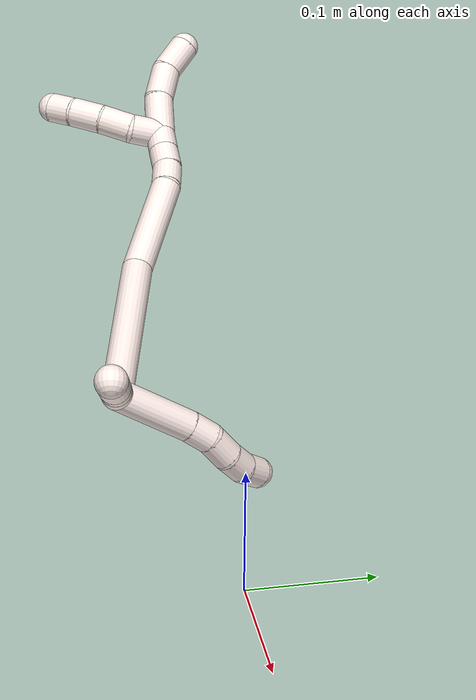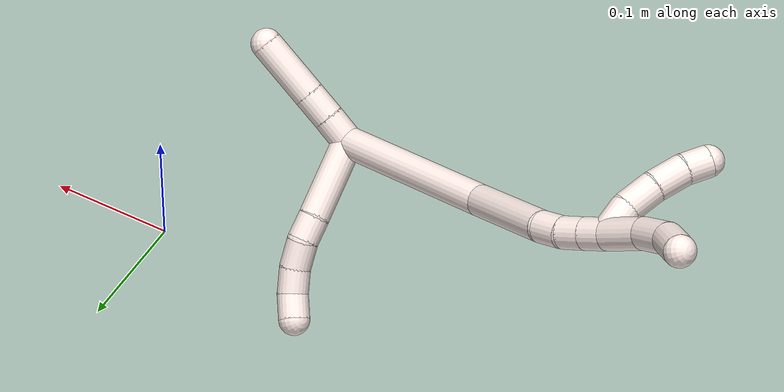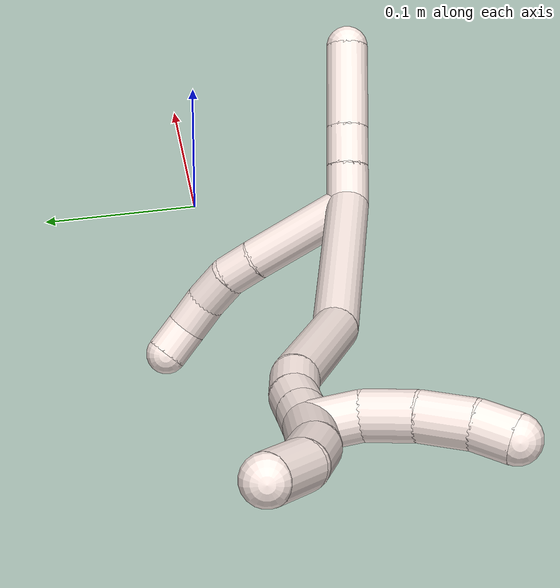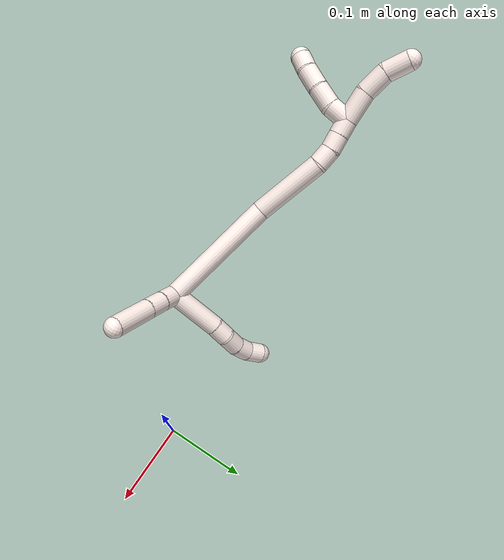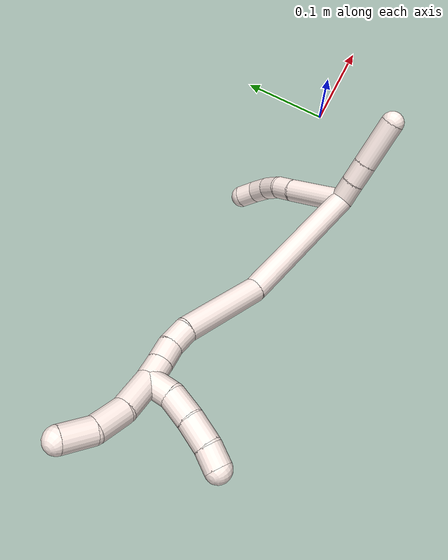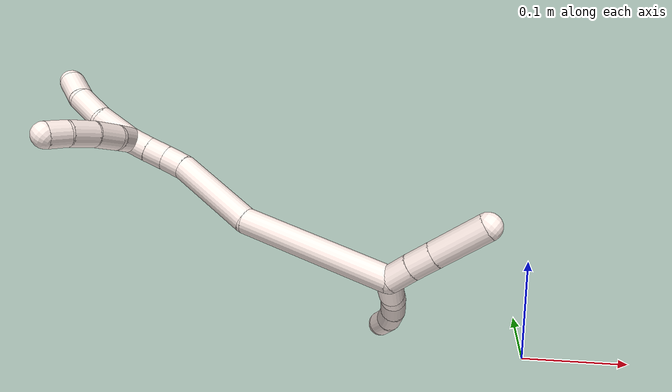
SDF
<sdf version="1.7">
 <world name="default">
  <model name="11">
   <static>0</static>
   <link name="11">
    <collision name="collision-cylinder-e_1_2_8">
     <pose>-0.011752 0.029903 -0.006455 -1.7834 -0.366769 0.451711</pose>
     <geometry><cylinder><radius>0.0125</radius><length>0.065543</length></cylinder></geometry>
     <surface>
      <friction><ode><mu>1.16</mu><mu2>1.16</mu2><slip1>0</slip1><slip2>0</slip2></ode></friction>
      <contact><ode><kp>1e+06</kp><kd>1</kd><max_vel>0</max_vel><min_depth>0.001</min_depth></ode></contact>
     </surface>
    </collision>
    <visual name="visual-cylinder-e_1_2_8">
     <pose>-0.011752 0.029903 -0.006455 -1.7834 -0.366769 0.451711</pose>
     <geometry><cylinder><radius>0.0125</radius><length>0.065543</length></cylinder></geometry>
     <material><ambient>1 0.933333 0.909804 1</ambient></material>
    </visual>
    <collision name="collision-cylinder-e_2_8_9">
     <pose>-0.027444 0.068839 -0.01591 -1.89147 -0.392504 0.537704</pose>
     <geometry><cylinder><radius>0.0125</radius><length>0.020603</length></cylinder></geometry>
     <surface>
      <friction><ode><mu>1.16</mu><mu2>1.16</mu2><slip1>0</slip1><slip2>0</slip2></ode></friction>
      <contact><ode><kp>1e+06</kp><kd>1</kd><max_vel>0</max_vel><min_depth>0.001</min_depth></ode></contact>
     </surface>
    </collision>
    <visual name="visual-cylinder-e_2_8_9">
     <pose>-0.027444 0.068839 -0.01591 -1.89147 -0.392504 0.537704</pose>
     <geometry><cylinder><radius>0.0125</radius><length>0.020603</length></cylinder></geometry>
     <material><ambient>1 0.933333 0.909804 1</ambient></material>
    </visual>
    <collision name="collision-cylinder-e_3_9_10">
     <pose>-0.038095 0.08599 -0.023131 -2.0502 -0.632805 0.98903</pose>
     <geometry><cylinder><radius>0.0125</radius><length>0.022693</length></cylinder></geometry>
     <surface>
      <friction><ode><mu>1.16</mu><mu2>1.16</mu2><slip1>0</slip1><slip2>0</slip2></ode></friction>
      <contact><ode><kp>1e+06</kp><kd>1</kd><max_vel>0</max_vel><min_depth>0.001</min_depth></ode></contact>
     </surface>
    </collision>
    <visual name="visual-cylinder-e_3_9_10">
     <pose>-0.038095 0.08599 -0.023131 -2.0502 -0.632805 0.98903</pose>
     <geometry><cylinder><radius>0.0125</radius><length>0.022693</length></cylinder></geometry>
     <material><ambient>1 0.933333 0.909804 1</ambient></material>
    </visual>
    <collision name="collision-cylinder-e_4_10_11">
     <pose>-0.051926 0.101431 -0.029175 -1.81499 -0.756383 0.940789</pose>
     <geometry><cylinder><radius>0.0125</radius><length>0.020751</length></cylinder></geometry>
     <surface>
      <friction><ode><mu>1.16</mu><mu2>1.16</mu2><slip1>0</slip1><slip2>0</slip2></ode></friction>
      <contact><ode><kp>1e+06</kp><kd>1</kd><max_vel>0</max_vel><min_depth>0.001</min_depth></ode></contact>
     </surface>
    </collision>
    <visual name="visual-cylinder-e_4_10_11">
     <pose>-0.051926 0.101431 -0.029175 -1.81499 -0.756383 0.940789</pose>
     <geometry><cylinder><radius>0.0125</radius><length>0.020751</length></cylinder></geometry>
     <material><ambient>1 0.933333 0.909804 1</ambient></material>
    </visual>
    <collision name="collision-cylinder-e_5_11_6">
     <pose>-0.065964 0.116183 -0.029953 -1.43078 -0.744848 0.654502</pose>
     <geometry><cylinder><radius>0.0125</radius><length>0.020409</length></cylinder></geometry>
     <surface>
      <friction><ode><mu>1.16</mu><mu2>1.16</mu2><slip1>0</slip1><slip2>0</slip2></ode></friction>
      <contact><ode><kp>1e+06</kp><kd>1</kd><max_vel>0</max_vel><min_depth>0.001</min_depth></ode></contact>
     </surface>
    </collision>
    <visual name="visual-cylinder-e_5_11_6">
     <pose>-0.065964 0.116183 -0.029953 -1.43078 -0.744848 0.654502</pose>
     <geometry><cylinder><radius>0.0125</radius><length>0.020409</length></cylinder></geometry>
     <material><ambient>1 0.933333 0.909804 1</ambient></material>
    </visual>
    <collision name="collision-cylinder-e_1_2_12">
     <pose>0.011425 -0.002072 -0.00338 2.59152 1.2368 2.38643</pose>
     <geometry><cylinder><radius>0.0125</radius><length>0.024187</length></cylinder></geometry>
     <surface>
      <friction><ode><mu>1.16</mu><mu2>1.16</mu2><slip1>0</slip1><slip2>0</slip2></ode></friction>
      <contact><ode><kp>1e+06</kp><kd>1</kd><max_vel>0</max_vel><min_depth>0.001</min_depth></ode></contact>
     </surface>
    </collision>
    <visual name="visual-cylinder-e_1_2_12">
     <pose>0.011425 -0.002072 -0.00338 2.59152 1.2368 2.38643</pose>
     <geometry><cylinder><radius>0.0125</radius><length>0.024187</length></cylinder></geometry>
     <material><ambient>1 0.933333 0.909804 1</ambient></material>
    </visual>
    <collision name="collision-cylinder-e_2_12_13">
     <pose>0.033977 -0.006173 -0.010519 2.64694 1.2042 2.43738</pose>
     <geometry><cylinder><radius>0.0125</radius><length>0.023836</length></cylinder></geometry>
     <surface>
      <friction><ode><mu>1.16</mu><mu2>1.16</mu2><slip1>0</slip1><slip2>0</slip2></ode></friction>
      <contact><ode><kp>1e+06</kp><kd>1</kd><max_vel>0</max_vel><min_depth>0.001</min_depth></ode></contact>
     </surface>
    </collision>
    <visual name="visual-cylinder-e_2_12_13">
     <pose>0.033977 -0.006173 -0.010519 2.64694 1.2042 2.43738</pose>
     <geometry><cylinder><radius>0.0125</radius><length>0.023836</length></cylinder></geometry>
     <material><ambient>1 0.933333 0.909804 1</ambient></material>
    </visual>
    <collision name="collision-cylinder-e_3_13_5">
     <pose>0.069368 -0.012611 -0.022474 2.64791 1.20457 2.43896</pose>
     <geometry><cylinder><radius>0.0125</radius><length>0.051977</length></cylinder></geometry>
     <surface>
      <friction><ode><mu>1.16</mu><mu2>1.16</mu2><slip1>0</slip1><slip2>0</slip2></ode></friction>
      <contact><ode><kp>1e+06</kp><kd>1</kd><max_vel>0</max_vel><min_depth>0.001</min_depth></ode></contact>
     </surface>
    </collision>
    <visual name="visual-cylinder-e_3_13_5">
     <pose>0.069368 -0.012611 -0.022474 2.64791 1.20457 2.43896</pose>
     <geometry><cylinder><radius>0.0125</radius><length>0.051977</length></cylinder></geometry>
     <material><ambient>1 0.933333 0.909804 1</ambient></material>
    </visual>
    <collision name="collision-cylinder-e_1_2_14">
     <pose>-0.027345 0.011525 0.067902 -0.168129 -0.377946 0.032229</pose>
     <geometry><cylinder><radius>0.0125</radius><length>0.148205</length></cylinder></geometry>
     <surface>
      <friction><ode><mu>1.16</mu><mu2>1.16</mu2><slip1>0</slip1><slip2>0</slip2></ode></friction>
      <contact><ode><kp>1e+06</kp><kd>1</kd><max_vel>0</max_vel><min_depth>0.001</min_depth></ode></contact>
     </surface>
    </collision>
    <visual name="visual-cylinder-e_1_2_14">
     <pose>-0.027345 0.011525 0.067902 -0.168129 -0.377946 0.032229</pose>
     <geometry><cylinder><radius>0.0125</radius><length>0.148205</length></cylinder></geometry>
     <material><ambient>1 0.933333 0.909804 1</ambient></material>
    </visual>
    <collision name="collision-cylinder-e_2_14_15">
     <pose>-0.059585 0.035977 0.178449 -0.294316 -0.109421 0.016235</pose>
     <geometry><cylinder><radius>0.0125</radius><length>0.089659</length></cylinder></geometry>
     <surface>
      <friction><ode><mu>1.16</mu><mu2>1.16</mu2><slip1>0</slip1><slip2>0</slip2></ode></friction>
      <contact><ode><kp>1e+06</kp><kd>1</kd><max_vel>0</max_vel><min_depth>0.001</min_depth></ode></contact>
     </surface>
    </collision>
    <visual name="visual-cylinder-e_2_14_15">
     <pose>-0.059585 0.035977 0.178449 -0.294316 -0.109421 0.016235</pose>
     <geometry><cylinder><radius>0.0125</radius><length>0.089659</length></cylinder></geometry>
     <material><ambient>1 0.933333 0.909804 1</ambient></material>
    </visual>
    <collision name="collision-cylinder-e_3_15_16">
     <pose>-0.0675 0.049951 0.231676 -0.098695 -0.276655 0.013751</pose>
     <geometry><cylinder><radius>0.0125</radius><length>0.022109</length></cylinder></geometry>
     <surface>
      <friction><ode><mu>1.16</mu><mu2>1.16</mu2><slip1>0</slip1><slip2>0</slip2></ode></friction>
      <contact><ode><kp>1e+06</kp><kd>1</kd><max_vel>0</max_vel><min_depth>0.001</min_depth></ode></contact>
     </surface>
    </collision>
    <visual name="visual-cylinder-e_3_15_16">
     <pose>-0.0675 0.049951 0.231676 -0.098695 -0.276655 0.013751</pose>
     <geometry><cylinder><radius>0.0125</radius><length>0.022109</length></cylinder></geometry>
     <material><ambient>1 0.933333 0.909804 1</ambient></material>
    </visual>
    <collision name="collision-cylinder-e_4_16_17">
     <pose>-0.073022 0.049818 0.25187 0.122231 -0.252965 -0.015562</pose>
     <geometry><cylinder><radius>0.0125</radius><length>0.020004</length></cylinder></geometry>
     <surface>
      <friction><ode><mu>1.16</mu><mu2>1.16</mu2><slip1>0</slip1><slip2>0</slip2></ode></friction>
      <contact><ode><kp>1e+06</kp><kd>1</kd><max_vel>0</max_vel><min_depth>0.001</min_depth></ode></contact>
     </surface>
    </collision>
    <visual name="visual-cylinder-e_4_16_17">
     <pose>-0.073022 0.049818 0.25187 0.122231 -0.252965 -0.015562</pose>
     <geometry><cylinder><radius>0.0125</radius><length>0.020004</length></cylinder></geometry>
     <material><ambient>1 0.933333 0.909804 1</ambient></material>
    </visual>
    <collision name="collision-cylinder-e_5_17_1">
     <pose>-0.0777 0.047612 0.2712 0.105116 -0.218872 -0.01156</pose>
     <geometry><cylinder><radius>0.0125</radius><length>0.020023</length></cylinder></geometry>
     <surface>
      <friction><ode><mu>1.16</mu><mu2>1.16</mu2><slip1>0</slip1><slip2>0</slip2></ode></friction>
      <contact><ode><kp>1e+06</kp><kd>1</kd><max_vel>0</max_vel><min_depth>0.001</min_depth></ode></contact>
     </surface>
    </collision>
    <visual name="visual-cylinder-e_5_17_1">
     <pose>-0.0777 0.047612 0.2712 0.105116 -0.218872 -0.01156</pose>
     <geometry><cylinder><radius>0.0125</radius><length>0.020023</length></cylinder></geometry>
     <material><ambient>1 0.933333 0.909804 1</ambient></material>
    </visual>
    <collision name="collision-cylinder-e_1_1_18">
     <pose>-0.08155 0.046029 0.299747 0.029617 -0.088793 -0.001316</pose>
     <geometry><cylinder><radius>0.0125</radius><length>0.037821</length></cylinder></geometry>
     <surface>
      <friction><ode><mu>1.16</mu><mu2>1.16</mu2><slip1>0</slip1><slip2>0</slip2></ode></friction>
      <contact><ode><kp>1e+06</kp><kd>1</kd><max_vel>0</max_vel><min_depth>0.001</min_depth></ode></contact>
     </surface>
    </collision>
    <visual name="visual-cylinder-e_1_1_18">
     <pose>-0.08155 0.046029 0.299747 0.029617 -0.088793 -0.001316</pose>
     <geometry><cylinder><radius>0.0125</radius><length>0.037821</length></cylinder></geometry>
     <material><ambient>1 0.933333 0.909804 1</ambient></material>
    </visual>
    <collision name="collision-cylinder-e_2_18_19">
     <pose>-0.083772 0.048836 0.333994 -0.21483 -0.034532 0.003724</pose>
     <geometry><cylinder><radius>0.0125</radius><length>0.031584</length></cylinder></geometry>
     <surface>
      <friction><ode><mu>1.16</mu><mu2>1.16</mu2><slip1>0</slip1><slip2>0</slip2></ode></friction>
      <contact><ode><kp>1e+06</kp><kd>1</kd><max_vel>0</max_vel><min_depth>0.001</min_depth></ode></contact>
     </surface>
    </collision>
    <visual name="visual-cylinder-e_2_18_19">
     <pose>-0.083772 0.048836 0.333994 -0.21483 -0.034532 0.003724</pose>
     <geometry><cylinder><radius>0.0125</radius><length>0.031584</length></cylinder></geometry>
     <material><ambient>1 0.933333 0.909804 1</ambient></material>
    </visual>
    <collision name="collision-cylinder-e_3_19_4">
     <pose>-0.083749 0.060263 0.362402 -0.555555 0.037172 -0.010601</pose>
     <geometry><cylinder><radius>0.0125</radius><length>0.030595</length></cylinder></geometry>
     <surface>
      <friction><ode><mu>1.16</mu><mu2>1.16</mu2><slip1>0</slip1><slip2>0</slip2></ode></friction>
      <contact><ode><kp>1e+06</kp><kd>1</kd><max_vel>0</max_vel><min_depth>0.001</min_depth></ode></contact>
     </surface>
    </collision>
    <visual name="visual-cylinder-e_3_19_4">
     <pose>-0.083749 0.060263 0.362402 -0.555555 0.037172 -0.010601</pose>
     <geometry><cylinder><radius>0.0125</radius><length>0.030595</length></cylinder></geometry>
     <material><ambient>1 0.933333 0.909804 1</ambient></material>
    </visual>
    <collision name="collision-cylinder-e_1_1_20">
     <pose>-0.079132 0.033665 0.282156 1.47538 0.057077 0.051877</pose>
     <geometry><cylinder><radius>0.0125</radius><length>0.026005</length></cylinder></geometry>
     <surface>
      <friction><ode><mu>1.16</mu><mu2>1.16</mu2><slip1>0</slip1><slip2>0</slip2></ode></friction>
      <contact><ode><kp>1e+06</kp><kd>1</kd><max_vel>0</max_vel><min_depth>0.001</min_depth></ode></contact>
     </surface>
    </collision>
    <visual name="visual-cylinder-e_1_1_20">
     <pose>-0.079132 0.033665 0.282156 1.47538 0.057077 0.051877</pose>
     <geometry><cylinder><radius>0.0125</radius><length>0.026005</length></cylinder></geometry>
     <material><ambient>1 0.933333 0.909804 1</ambient></material>
    </visual>
    <collision name="collision-cylinder-e_2_20_21">
     <pose>-0.079998 0.008228 0.287832 1.2299 -0.120495 -0.085159</pose>
     <geometry><cylinder><radius>0.0125</radius><length>0.026751</length></cylinder></geometry>
     <surface>
      <friction><ode><mu>1.16</mu><mu2>1.16</mu2><slip1>0</slip1><slip2>0</slip2></ode></friction>
      <contact><ode><kp>1e+06</kp><kd>1</kd><max_vel>0</max_vel><min_depth>0.001</min_depth></ode></contact>
     </surface>
    </collision>
    <visual name="visual-cylinder-e_2_20_21">
     <pose>-0.079998 0.008228 0.287832 1.2299 -0.120495 -0.085159</pose>
     <geometry><cylinder><radius>0.0125</radius><length>0.026751</length></cylinder></geometry>
     <material><ambient>1 0.933333 0.909804 1</ambient></material>
    </visual>
    <collision name="collision-cylinder-e_3_21_22">
     <pose>-0.084972 -0.016525 0.296801 1.2163 -0.252444 -0.176226</pose>
     <geometry><cylinder><radius>0.0125</radius><length>0.026955</length></cylinder></geometry>
     <surface>
      <friction><ode><mu>1.16</mu><mu2>1.16</mu2><slip1>0</slip1><slip2>0</slip2></ode></friction>
      <contact><ode><kp>1e+06</kp><kd>1</kd><max_vel>0</max_vel><min_depth>0.001</min_depth></ode></contact>
     </surface>
    </collision>
    <visual name="visual-cylinder-e_3_21_22">
     <pose>-0.084972 -0.016525 0.296801 1.2163 -0.252444 -0.176226</pose>
     <geometry><cylinder><radius>0.0125</radius><length>0.026955</length></cylinder></geometry>
     <material><ambient>1 0.933333 0.909804 1</ambient></material>
    </visual>
    <collision name="collision-cylinder-e_4_22_3">
     <pose>-0.092483 -0.037177 0.305199 1.13986 -0.420898 -0.272103</pose>
     <geometry><cylinder><radius>0.0125</radius><length>0.02029</length></cylinder></geometry>
     <surface>
      <friction><ode><mu>1.16</mu><mu2>1.16</mu2><slip1>0</slip1><slip2>0</slip2></ode></friction>
      <contact><ode><kp>1e+06</kp><kd>1</kd><max_vel>0</max_vel><min_depth>0.001</min_depth></ode></contact>
     </surface>
    </collision>
    <visual name="visual-cylinder-e_4_22_3">
     <pose>-0.092483 -0.037177 0.305199 1.13986 -0.420898 -0.272103</pose>
     <geometry><cylinder><radius>0.0125</radius><length>0.02029</length></cylinder></geometry>
     <material><ambient>1 0.933333 0.909804 1</ambient></material>
    </visual>
    <collision name="collision-sphere-3">
     <pose>-0.096628 -0.045589 0.309067 0 -0 0</pose>
     <geometry><sphere><radius>0.0125</radius></sphere></geometry>
     <surface>
      <friction><ode><mu>1.16</mu><mu2>1.16</mu2><slip1>0</slip1><slip2>0</slip2></ode></friction>
      <contact><ode><kp>1e+06</kp><kd>1</kd><max_vel>0</max_vel><min_depth>0.001</min_depth></ode></contact>
     </surface>
    </collision>
    <visual name="visual-sphere-3">
     <pose>-0.096628 -0.045589 0.309067 0 -0 0</pose>
     <geometry><sphere><radius>0.0125</radius></sphere></geometry>
     <material><ambient>1 0.933333 0.909804 1</ambient></material>
    </visual>
    <collision name="collision-sphere-22">
     <pose>-0.088338 -0.028764 0.301331 0 -0 0</pose>
     <geometry><sphere><radius>0.0125</radius></sphere></geometry>
     <surface>
      <friction><ode><mu>1.16</mu><mu2>1.16</mu2><slip1>0</slip1><slip2>0</slip2></ode></friction>
      <contact><ode><kp>1e+06</kp><kd>1</kd><max_vel>0</max_vel><min_depth>0.001</min_depth></ode></contact>
     </surface>
    </collision>
    <visual name="visual-sphere-22">
     <pose>-0.088338 -0.028764 0.301331 0 -0 0</pose>
     <geometry><sphere><radius>0.0125</radius></sphere></geometry>
     <material><ambient>1 0.933333 0.909804 1</ambient></material>
    </visual>
    <collision name="collision-sphere-21">
     <pose>-0.081605 -0.004286 0.292271 0 -0 0</pose>
     <geometry><sphere><radius>0.0125</radius></sphere></geometry>
     <surface>
      <friction><ode><mu>1.16</mu><mu2>1.16</mu2><slip1>0</slip1><slip2>0</slip2></ode></friction>
      <contact><ode><kp>1e+06</kp><kd>1</kd><max_vel>0</max_vel><min_depth>0.001</min_depth></ode></contact>
     </surface>
    </collision>
    <visual name="visual-sphere-21">
     <pose>-0.081605 -0.004286 0.292271 0 -0 0</pose>
     <geometry><sphere><radius>0.0125</radius></sphere></geometry>
     <material><ambient>1 0.933333 0.909804 1</ambient></material>
    </visual>
    <collision name="collision-sphere-20">
     <pose>-0.07839 0.020743 0.283392 0 -0 0</pose>
     <geometry><sphere><radius>0.0125</radius></sphere></geometry>
     <surface>
      <friction><ode><mu>1.16</mu><mu2>1.16</mu2><slip1>0</slip1><slip2>0</slip2></ode></friction>
      <contact><ode><kp>1e+06</kp><kd>1</kd><max_vel>0</max_vel><min_depth>0.001</min_depth></ode></contact>
     </surface>
    </collision>
    <visual name="visual-sphere-20">
     <pose>-0.07839 0.020743 0.283392 0 -0 0</pose>
     <geometry><sphere><radius>0.0125</radius></sphere></geometry>
     <material><ambient>1 0.933333 0.909804 1</ambient></material>
    </visual>
    <collision name="collision-sphere-4">
     <pose>-0.083181 0.068325 0.37539 0 -0 0</pose>
     <geometry><sphere><radius>0.0125</radius></sphere></geometry>
     <surface>
      <friction><ode><mu>1.16</mu><mu2>1.16</mu2><slip1>0</slip1><slip2>0</slip2></ode></friction>
      <contact><ode><kp>1e+06</kp><kd>1</kd><max_vel>0</max_vel><min_depth>0.001</min_depth></ode></contact>
     </surface>
    </collision>
    <visual name="visual-sphere-4">
     <pose>-0.083181 0.068325 0.37539 0 -0 0</pose>
     <geometry><sphere><radius>0.0125</radius></sphere></geometry>
     <material><ambient>1 0.933333 0.909804 1</ambient></material>
    </visual>
    <collision name="collision-sphere-6">
     <pose>-0.072882 0.123612 -0.028906 0 -0 0</pose>
     <geometry><sphere><radius>0.0125</radius></sphere></geometry>
     <surface>
      <friction><ode><mu>1.16</mu><mu2>1.16</mu2><slip1>0</slip1><slip2>0</slip2></ode></friction>
      <contact><ode><kp>1e+06</kp><kd>1</kd><max_vel>0</max_vel><min_depth>0.001</min_depth></ode></contact>
     </surface>
    </collision>
    <visual name="visual-sphere-6">
     <pose>-0.072882 0.123612 -0.028906 0 -0 0</pose>
     <geometry><sphere><radius>0.0125</radius></sphere></geometry>
     <material><ambient>1 0.933333 0.909804 1</ambient></material>
    </visual>
    <collision name="collision-sphere-11">
     <pose>-0.059047 0.108754 -0.031 0 -0 0</pose>
     <geometry><sphere><radius>0.0125</radius></sphere></geometry>
     <surface>
      <friction><ode><mu>1.16</mu><mu2>1.16</mu2><slip1>0</slip1><slip2>0</slip2></ode></friction>
      <contact><ode><kp>1e+06</kp><kd>1</kd><max_vel>0</max_vel><min_depth>0.001</min_depth></ode></contact>
     </surface>
    </collision>
    <visual name="visual-sphere-11">
     <pose>-0.059047 0.108754 -0.031 0 -0 0</pose>
     <geometry><sphere><radius>0.0125</radius></sphere></geometry>
     <material><ambient>1 0.933333 0.909804 1</ambient></material>
    </visual>
    <collision name="collision-sphere-10">
     <pose>-0.044806 0.094108 -0.027351 0 -0 0</pose>
     <geometry><sphere><radius>0.0125</radius></sphere></geometry>
     <surface>
      <friction><ode><mu>1.16</mu><mu2>1.16</mu2><slip1>0</slip1><slip2>0</slip2></ode></friction>
      <contact><ode><kp>1e+06</kp><kd>1</kd><max_vel>0</max_vel><min_depth>0.001</min_depth></ode></contact>
     </surface>
    </collision>
    <visual name="visual-sphere-10">
     <pose>-0.044806 0.094108 -0.027351 0 -0 0</pose>
     <geometry><sphere><radius>0.0125</radius></sphere></geometry>
     <material><ambient>1 0.933333 0.909804 1</ambient></material>
    </visual>
    <collision name="collision-sphere-9">
     <pose>-0.031385 0.077872 -0.01891 0 -0 0</pose>
     <geometry><sphere><radius>0.0125</radius></sphere></geometry>
     <surface>
      <friction><ode><mu>1.16</mu><mu2>1.16</mu2><slip1>0</slip1><slip2>0</slip2></ode></friction>
      <contact><ode><kp>1e+06</kp><kd>1</kd><max_vel>0</max_vel><min_depth>0.001</min_depth></ode></contact>
     </surface>
    </collision>
    <visual name="visual-sphere-9">
     <pose>-0.031385 0.077872 -0.01891 0 -0 0</pose>
     <geometry><sphere><radius>0.0125</radius></sphere></geometry>
     <material><ambient>1 0.933333 0.909804 1</ambient></material>
    </visual>
    <collision name="collision-sphere-2">
     <geometry><sphere><radius>0.0125</radius></sphere></geometry>
     <surface>
      <friction><ode><mu>1.16</mu><mu2>1.16</mu2><slip1>0</slip1><slip2>0</slip2></ode></friction>
      <contact><ode><kp>1e+06</kp><kd>1</kd><max_vel>0</max_vel><min_depth>0.001</min_depth></ode></contact>
     </surface>
    </collision>
    <visual name="visual-sphere-2">
     <geometry><sphere><radius>0.0125</radius></sphere></geometry>
     <material><ambient>1 0.933333 0.909804 1</ambient></material>
    </visual>
    <collision name="collision-sphere-19">
     <pose>-0.084318 0.0522 0.349414 0 -0 0</pose>
     <geometry><sphere><radius>0.0125</radius></sphere></geometry>
     <surface>
      <friction><ode><mu>1.16</mu><mu2>1.16</mu2><slip1>0</slip1><slip2>0</slip2></ode></friction>
      <contact><ode><kp>1e+06</kp><kd>1</kd><max_vel>0</max_vel><min_depth>0.001</min_depth></ode></contact>
     </surface>
    </collision>
    <visual name="visual-sphere-19">
     <pose>-0.084318 0.0522 0.349414 0 -0 0</pose>
     <geometry><sphere><radius>0.0125</radius></sphere></geometry>
     <material><ambient>1 0.933333 0.909804 1</ambient></material>
    </visual>
    <collision name="collision-sphere-8">
     <pose>-0.023504 0.059806 -0.01291 0 -0 0</pose>
     <geometry><sphere><radius>0.0125</radius></sphere></geometry>
     <surface>
      <friction><ode><mu>1.16</mu><mu2>1.16</mu2><slip1>0</slip1><slip2>0</slip2></ode></friction>
      <contact><ode><kp>1e+06</kp><kd>1</kd><max_vel>0</max_vel><min_depth>0.001</min_depth></ode></contact>
     </surface>
    </collision>
    <visual name="visual-sphere-8">
     <pose>-0.023504 0.059806 -0.01291 0 -0 0</pose>
     <geometry><sphere><radius>0.0125</radius></sphere></geometry>
     <material><ambient>1 0.933333 0.909804 1</ambient></material>
    </visual>
    <collision name="collision-sphere-12">
     <pose>0.022851 -0.004145 -0.006759 0 -0 0</pose>
     <geometry><sphere><radius>0.0125</radius></sphere></geometry>
     <surface>
      <friction><ode><mu>1.16</mu><mu2>1.16</mu2><slip1>0</slip1><slip2>0</slip2></ode></friction>
      <contact><ode><kp>1e+06</kp><kd>1</kd><max_vel>0</max_vel><min_depth>0.001</min_depth></ode></contact>
     </surface>
    </collision>
    <visual name="visual-sphere-12">
     <pose>0.022851 -0.004145 -0.006759 0 -0 0</pose>
     <geometry><sphere><radius>0.0125</radius></sphere></geometry>
     <material><ambient>1 0.933333 0.909804 1</ambient></material>
    </visual>
    <collision name="collision-sphere-13">
     <pose>0.045103 -0.008201 -0.014279 0 -0 0</pose>
     <geometry><sphere><radius>0.0125</radius></sphere></geometry>
     <surface>
      <friction><ode><mu>1.16</mu><mu2>1.16</mu2><slip1>0</slip1><slip2>0</slip2></ode></friction>
      <contact><ode><kp>1e+06</kp><kd>1</kd><max_vel>0</max_vel><min_depth>0.001</min_depth></ode></contact>
     </surface>
    </collision>
    <visual name="visual-sphere-13">
     <pose>0.045103 -0.008201 -0.014279 0 -0 0</pose>
     <geometry><sphere><radius>0.0125</radius></sphere></geometry>
     <material><ambient>1 0.933333 0.909804 1</ambient></material>
    </visual>
    <collision name="collision-sphere-5">
     <pose>0.093633 -0.017021 -0.030669 0 -0 0</pose>
     <geometry><sphere><radius>0.0125</radius></sphere></geometry>
     <surface>
      <friction><ode><mu>1.16</mu><mu2>1.16</mu2><slip1>0</slip1><slip2>0</slip2></ode></friction>
      <contact><ode><kp>1e+06</kp><kd>1</kd><max_vel>0</max_vel><min_depth>0.001</min_depth></ode></contact>
     </surface>
    </collision>
    <visual name="visual-sphere-5">
     <pose>0.093633 -0.017021 -0.030669 0 -0 0</pose>
     <geometry><sphere><radius>0.0125</radius></sphere></geometry>
     <material><ambient>1 0.933333 0.909804 1</ambient></material>
    </visual>
    <collision name="collision-sphere-14">
     <pose>-0.05469 0.02305 0.135803 0 -0 0</pose>
     <geometry><sphere><radius>0.0125</radius></sphere></geometry>
     <surface>
      <friction><ode><mu>1.16</mu><mu2>1.16</mu2><slip1>0</slip1><slip2>0</slip2></ode></friction>
      <contact><ode><kp>1e+06</kp><kd>1</kd><max_vel>0</max_vel><min_depth>0.001</min_depth></ode></contact>
     </surface>
    </collision>
    <visual name="visual-sphere-14">
     <pose>-0.05469 0.02305 0.135803 0 -0 0</pose>
     <geometry><sphere><radius>0.0125</radius></sphere></geometry>
     <material><ambient>1 0.933333 0.909804 1</ambient></material>
    </visual>
    <collision name="collision-sphere-15">
     <pose>-0.064481 0.048903 0.221094 0 -0 0</pose>
     <geometry><sphere><radius>0.0125</radius></sphere></geometry>
     <surface>
      <friction><ode><mu>1.16</mu><mu2>1.16</mu2><slip1>0</slip1><slip2>0</slip2></ode></friction>
      <contact><ode><kp>1e+06</kp><kd>1</kd><max_vel>0</max_vel><min_depth>0.001</min_depth></ode></contact>
     </surface>
    </collision>
    <visual name="visual-sphere-15">
     <pose>-0.064481 0.048903 0.221094 0 -0 0</pose>
     <geometry><sphere><radius>0.0125</radius></sphere></geometry>
     <material><ambient>1 0.933333 0.909804 1</ambient></material>
    </visual>
    <collision name="collision-sphere-16">
     <pose>-0.070519 0.050999 0.242259 0 -0 0</pose>
     <geometry><sphere><radius>0.0125</radius></sphere></geometry>
     <surface>
      <friction><ode><mu>1.16</mu><mu2>1.16</mu2><slip1>0</slip1><slip2>0</slip2></ode></friction>
      <contact><ode><kp>1e+06</kp><kd>1</kd><max_vel>0</max_vel><min_depth>0.001</min_depth></ode></contact>
     </surface>
    </collision>
    <visual name="visual-sphere-16">
     <pose>-0.070519 0.050999 0.242259 0 -0 0</pose>
     <geometry><sphere><radius>0.0125</radius></sphere></geometry>
     <material><ambient>1 0.933333 0.909804 1</ambient></material>
    </visual>
    <collision name="collision-sphere-17">
     <pose>-0.075526 0.048638 0.261481 0 -0 0</pose>
     <geometry><sphere><radius>0.0125</radius></sphere></geometry>
     <surface>
      <friction><ode><mu>1.16</mu><mu2>1.16</mu2><slip1>0</slip1><slip2>0</slip2></ode></friction>
      <contact><ode><kp>1e+06</kp><kd>1</kd><max_vel>0</max_vel><min_depth>0.001</min_depth></ode></contact>
     </surface>
    </collision>
    <visual name="visual-sphere-17">
     <pose>-0.075526 0.048638 0.261481 0 -0 0</pose>
     <geometry><sphere><radius>0.0125</radius></sphere></geometry>
     <material><ambient>1 0.933333 0.909804 1</ambient></material>
    </visual>
    <collision name="collision-sphere-1">
     <pose>-0.079873 0.046587 0.280919 0 -0 0</pose>
     <geometry><sphere><radius>0.0125</radius></sphere></geometry>
     <surface>
      <friction><ode><mu>1.16</mu><mu2>1.16</mu2><slip1>0</slip1><slip2>0</slip2></ode></friction>
      <contact><ode><kp>1e+06</kp><kd>1</kd><max_vel>0</max_vel><min_depth>0.001</min_depth></ode></contact>
     </surface>
    </collision>
    <visual name="visual-sphere-1">
     <pose>-0.079873 0.046587 0.280919 0 -0 0</pose>
     <geometry><sphere><radius>0.0125</radius></sphere></geometry>
     <material><ambient>1 0.933333 0.909804 1</ambient></material>
    </visual>
    <collision name="collision-sphere-18">
     <pose>-0.083227 0.045471 0.318574 0 -0 0</pose>
     <geometry><sphere><radius>0.0125</radius></sphere></geometry>
     <surface>
      <friction><ode><mu>1.16</mu><mu2>1.16</mu2><slip1>0</slip1><slip2>0</slip2></ode></friction>
      <contact><ode><kp>1e+06</kp><kd>1</kd><max_vel>0</max_vel><min_depth>0.001</min_depth></ode></contact>
     </surface>
    </collision>
    <visual name="visual-sphere-18">
     <pose>-0.083227 0.045471 0.318574 0 -0 0</pose>
     <geometry><sphere><radius>0.0125</radius></sphere></geometry>
     <material><ambient>1 0.933333 0.909804 1</ambient></material>
    </visual>
    <inertial>
     <pose>-0.040658 0.029285 0.133151 0 -0 0</pose>
     <mass>0.75</mass>
     <inertia>
      <ixx>0.000389</ixx>
      <ixy>0</ixy>
      <ixz>0</ixz>
      <iyy>0.000406</iyy>
      <iyz>0</iyz>
      <izz>5.5e-05</izz>
     </inertia>
    </inertial>
   </link>
   <pose>-0.127004 -0.074974 0.102475 -0.214982 -0.882793 0.113493</pose>
  </model>
 </world>
</sdf>
